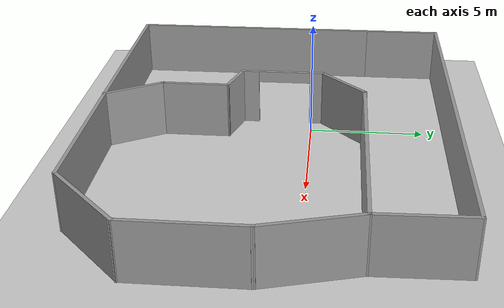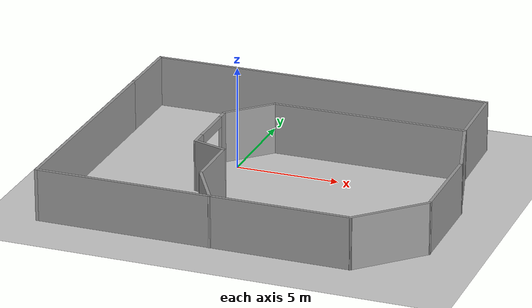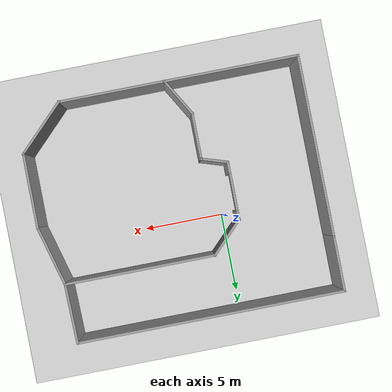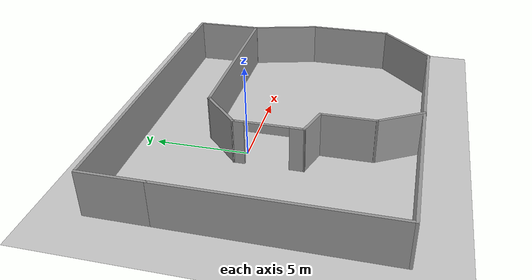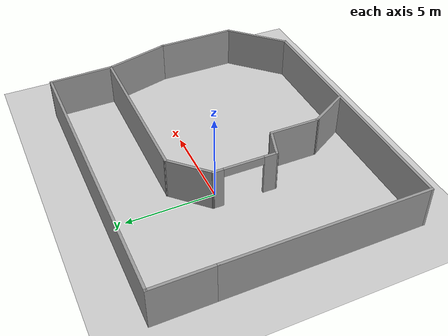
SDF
<sdf version="1.7">
 <world name="default">
  <light name="sun" type="directional">
   <pose>0 0 10 0 -0 0</pose>
   <diffuse>0.8 0.8 0.8 1</diffuse>
   <specular>0.2 0.2 0.2 1</specular>
   <attenuation>
    <range>1000</range>
    <constant>0.9</constant>
    <linear>0.01</linear>
    <quadratic>0.001</quadratic>
   </attenuation>
   <direction>-0.5 0.1 -0.9</direction>
   <spot><inner_angle>0</inner_angle><outer_angle>0</outer_angle><falloff>0</falloff></spot>
  </light>
  <model name="ground_plane">
   <static>1</static>
   <link name="link">
    <collision name="collision">
     <geometry><plane><normal>0 0 1</normal><size>100 100</size></plane></geometry>
     <surface>
      <contact><collide_bitmask>65535</collide_bitmask></contact>
      <friction><ode><mu>100</mu><mu2>50</mu2></ode></friction>
     </surface>
    </collision>
    <visual name="visual">
     <cast_shadows>0</cast_shadows>
     <geometry><plane><normal>0 0 1</normal><size>100 100</size></plane></geometry>
     <material>
      <script><uri>file://media/materials/scripts/gazebo.material</uri><name>Gazebo/Grey</name></script>
     </material>
    </visual>
   </link>
  </model>
  <gravity>0 0 -9.8</gravity>
  <magnetic_field>6e-06 2.3e-05 -4.2e-05</magnetic_field>
  <atmosphere type="adiabatic"/>
  <physics type="ode">
   <max_step_size>0.001</max_step_size>
   <real_time_factor>1</real_time_factor>
   <real_time_update_rate>1000</real_time_update_rate>
  </physics>
  <scene><ambient>0.4 0.4 0.4 1</ambient><background>0.7 0.7 0.7 1</background><shadows>1</shadows></scene>
  <audio><device>default</device></audio>
  <spherical_coordinates>
   <surface_model>EARTH_WGS84</surface_model>
   <latitude_deg>0</latitude_deg>
   <longitude_deg>0</longitude_deg>
   <elevation>0</elevation>
   <heading_deg>0</heading_deg>
  </spherical_coordinates>
  <model name="v2">
   <pose>2.5406 -1.40909 0 0 -0 0</pose>
   <link name="Wall_0">
    <collision name="Wall_0_Collision">
     <geometry><box><size>3 0.15 2.5</size></box></geometry>
     <pose>0 0 1.25 0 -0 0</pose>
    </collision>
    <visual name="Wall_0_Visual">
     <pose>0 0 1.25 0 -0 0</pose>
     <geometry><box><size>3 0.15 2.5</size></box></geometry>
     <material>
      <script><uri>file://media/materials/scripts/gazebo.material</uri><name>Gazebo/Grey</name></script>
      <ambient>1 1 1 1</ambient>
     </material>
     <meta><layer>0</layer></meta>
    </visual>
    <pose>-1.80171 -3.65857 0 0 -0 -1.5708</pose>
   </link>
   <link name="Wall_1">
    <collision name="Wall_1_Collision">
     <geometry><box><size>2.75 0.15 2.5</size></box></geometry>
     <pose>0 0 1.25 0 -0 0</pose>
    </collision>
    <visual name="Wall_1_Visual">
     <pose>0 0 1.25 0 -0 0</pose>
     <geometry><box><size>2.75 0.15 2.5</size></box></geometry>
     <material>
      <script><uri>file://media/materials/scripts/gazebo.material</uri><name>Gazebo/Grey</name></script>
      <ambient>1 1 1 1</ambient>
     </material>
     <meta><layer>0</layer></meta>
    </visual>
    <pose>-1.15171 -6.2094 0 0 -0 -1.0472</pose>
   </link>
   <link name="Wall_11">
    <collision name="Wall_11_Collision">
     <geometry><box><size>8.5 0.15 2.5</size></box></geometry>
     <pose>0 0 1.25 0 -0 0</pose>
    </collision>
    <visual name="Wall_11_Visual">
     <pose>0 0 1.25 0 -0 0</pose>
     <geometry><box><size>8.5 0.15 2.5</size></box></geometry>
     <material>
      <script><uri>file://media/materials/scripts/gazebo.material</uri><name>Gazebo/Grey</name></script>
      <ambient>1 1 1 1</ambient>
     </material>
     <meta><layer>0</layer></meta>
    </visual>
    <pose>-4.67671 -7.33524 0 0 -0 3.14159</pose>
   </link>
   <link name="Wall_12">
    <collision name="Wall_12_Collision">
     <geometry><box><size>11.5 0.15 2.5</size></box></geometry>
     <pose>0 0 1.25 0 -0 0</pose>
    </collision>
    <visual name="Wall_12_Visual">
     <pose>0 0 1.25 0 -0 0</pose>
     <geometry><box><size>11.5 0.15 2.5</size></box></geometry>
     <material>
      <script><uri>file://media/materials/scripts/gazebo.material</uri><name>Gazebo/Grey</name></script>
      <ambient>1 1 1 1</ambient>
     </material>
     <meta><layer>0</layer></meta>
    </visual>
    <pose>-8.85171 -1.66024 0 0 -0 1.5708</pose>
   </link>
   <link name="Wall_13">
    <collision name="Wall_13_Collision">
     <geometry><box><size>3.5 0.15 2.5</size></box></geometry>
     <pose>0 0 1.25 0 -0 0</pose>
    </collision>
    <visual name="Wall_13_Visual">
     <pose>0 0 1.25 0 -0 0</pose>
     <geometry><box><size>3.5 0.15 2.5</size></box></geometry>
     <material>
      <script><uri>file://media/materials/scripts/gazebo.material</uri><name>Gazebo/Grey</name></script>
      <ambient>1 1 1 1</ambient>
     </material>
     <meta><layer>0</layer></meta>
    </visual>
    <pose>-8.85171 5.68976 0 0 -0 1.5708</pose>
   </link>
   <link name="Wall_14">
    <collision name="Wall_14_Collision">
     <geometry><box><size>16.75 0.15 2.5</size></box></geometry>
     <pose>0 0 1.25 0 -0 0</pose>
    </collision>
    <visual name="Wall_14_Visual">
     <pose>0 0 1.25 0 -0 0</pose>
     <geometry><box><size>16.75 0.15 2.5</size></box></geometry>
     <material>
      <script><uri>file://media/materials/scripts/gazebo.material</uri><name>Gazebo/Grey</name></script>
      <ambient>1 1 1 1</ambient>
     </material>
     <meta><layer>0</layer></meta>
    </visual>
    <pose>-0.551713 7.36476 0 0 -0 0</pose>
   </link>
   <link name="Wall_15">
    <collision name="Wall_15_Collision">
     <geometry><box><size>3.80961 0.15 2.5</size></box></geometry>
     <pose>0 0 1.25 0 -0 0</pose>
    </collision>
    <visual name="Wall_15_Visual">
     <pose>0 0 1.25 0 -0 0</pose>
     <geometry><box><size>3.80961 0.15 2.5</size></box></geometry>
     <material>
      <script><uri>file://media/materials/scripts/gazebo.material</uri><name>Gazebo/Grey</name></script>
      <ambient>1 1 1 1</ambient>
     </material>
     <meta><layer>0</layer></meta>
    </visual>
    <pose>7.78624 5.53535 0 0 -0 -1.55005</pose>
   </link>
   <link name="Wall_2">
    <collision name="Wall_2_Collision">
     <geometry><box><size>6.75 0.15 2.5</size></box></geometry>
     <pose>0 0 1.25 0 -0 0</pose>
    </collision>
    <visual name="Wall_2_Visual">
     <pose>0 0 1.25 0 -0 0</pose>
     <geometry><box><size>6.75 0.15 2.5</size></box></geometry>
     <material>
      <script><uri>file://media/materials/scripts/gazebo.material</uri><name>Gazebo/Grey</name></script>
      <ambient>1 1 1 1</ambient>
     </material>
     <meta><layer>0</layer></meta>
    </visual>
    <pose>2.79829 -7.33524 0 0 -0 0</pose>
   </link>
   <link name="Wall_3">
    <collision name="Wall_3_Collision">
     <geometry><box><size>4 0.15 2.5</size></box></geometry>
     <pose>0 0 1.25 0 -0 0</pose>
    </collision>
    <visual name="Wall_3_Visual">
     <pose>0 0 1.25 0 -0 0</pose>
     <geometry><box><size>4 0.15 2.5</size></box></geometry>
     <material>
      <script><uri>file://media/materials/scripts/gazebo.material</uri><name>Gazebo/Grey</name></script>
      <ambient>1 1 1 1</ambient>
     </material>
     <meta><layer>0</layer></meta>
    </visual>
    <pose>7.45947 -5.97406 0 0 -0 0.785398</pose>
   </link>
   <link name="Wall_4">
    <collision name="Wall_4_Collision">
     <geometry><box><size>4.75 0.15 2.5</size></box></geometry>
     <pose>0 0 1.25 0 -0 0</pose>
    </collision>
    <visual name="Wall_4_Visual">
     <pose>0 0 1.25 0 -0 0</pose>
     <geometry><box><size>4.75 0.15 2.5</size></box></geometry>
     <material>
      <script><uri>file://media/materials/scripts/gazebo.material</uri><name>Gazebo/Grey</name></script>
      <ambient>1 1 1 1</ambient>
     </material>
     <meta><layer>0</layer></meta>
    </visual>
    <pose>8.82065 -2.31288 0 0 -0 1.5708</pose>
   </link>
   <link name="Wall_5">
    <collision name="Wall_5_Collision">
     <geometry><box><size>4 0.15 2.5</size></box></geometry>
     <pose>0 0 1.25 0 -0 0</pose>
    </collision>
    <visual name="Wall_5_Visual">
     <pose>0 0 1.25 0 -0 0</pose>
     <geometry><box><size>4 0.15 2.5</size></box></geometry>
     <material>
      <script><uri>file://media/materials/scripts/gazebo.material</uri><name>Gazebo/Grey</name></script>
      <ambient>1 1 1 1</ambient>
     </material>
     <meta><layer>0</layer></meta>
    </visual>
    <pose>8.32242 1.84653 0 0 -0 1.8326</pose>
   </link>
   <link name="Wall_6">
    <collision name="Wall_6_Collision">
     <geometry><box><size>9.5 0.15 2.5</size></box></geometry>
     <pose>0 0 1.25 0 -0 0</pose>
    </collision>
    <visual name="Wall_6_Visual">
     <pose>0 0 1.25 0 -0 0</pose>
     <geometry><box><size>9.5 0.15 2.5</size></box></geometry>
     <material>
      <script><uri>file://media/materials/scripts/gazebo.material</uri><name>Gazebo/Grey</name></script>
      <ambient>1 1 1 1</ambient>
     </material>
     <meta><layer>0</layer></meta>
    </visual>
    <pose>3.1492 3.70594 0 0 -0 3.14159</pose>
   </link>
   <link name="Wall_7">
    <collision name="Wall_7_Collision">
     <geometry><box><size>2.75 0.15 2.5</size></box></geometry>
     <pose>0 0 1.25 0 -0 0</pose>
    </collision>
    <visual name="Wall_7_Visual">
     <pose>0 0 1.25 0 -0 0</pose>
     <geometry><box><size>2.75 0.15 2.5</size></box></geometry>
     <material>
      <script><uri>file://media/materials/scripts/gazebo.material</uri><name>Gazebo/Grey</name></script>
      <ambient>1 1 1 1</ambient>
     </material>
     <meta><layer>0</layer></meta>
    </visual>
    <pose>-2.44504 2.7867 0 0 -0 -2.35619</pose>
   </link>
   <link name="Wall_8">
    <pose>-3.36428 0.067462 0 0 -0 -1.5708</pose>
    <visual name="Wall_8_Visual_0">
     <pose>-1.5511 0 1.25 0 -0 0</pose>
     <geometry><box><size>0.647805 0.15 2.5</size></box></geometry>
     <material>
      <script><uri>file://media/materials/scripts/gazebo.material</uri><name>Gazebo/Grey</name></script>
      <ambient>1 1 1 1</ambient>
     </material>
     <meta><layer>0</layer></meta>
    </visual>
    <collision name="Wall_8_Collision_0">
     <geometry><box><size>0.647805 0.15 2.5</size></box></geometry>
     <pose>-1.5511 0 1.25 0 -0 0</pose>
    </collision>
    <visual name="Wall_8_Visual_1">
     <pose>1.47176 0 1.25 0 -0 0</pose>
     <geometry><box><size>0.806477 0.15 2.5</size></box></geometry>
     <material>
      <script><uri>file://media/materials/scripts/gazebo.material</uri><name>Gazebo/Grey</name></script>
      <ambient>1 1 1 1</ambient>
     </material>
     <meta><layer>0</layer></meta>
    </visual>
    <collision name="Wall_8_Collision_1">
     <geometry><box><size>0.806477 0.15 2.5</size></box></geometry>
     <pose>1.47176 0 1.25 0 -0 0</pose>
    </collision>
    <visual name="Wall_8_Visual_2">
     <pose>-0.079336 0 2.25 0 -0 0</pose>
     <geometry><box><size>2.29572 0.15 0.5</size></box></geometry>
     <material>
      <script><uri>file://media/materials/scripts/gazebo.material</uri><name>Gazebo/Grey</name></script>
      <ambient>1 1 1 1</ambient>
     </material>
     <meta><layer>0</layer></meta>
    </visual>
    <collision name="Wall_8_Collision_2">
     <geometry><box><size>2.29572 0.15 0.5</size></box></geometry>
     <pose>-0.079336 0 2.25 0 -0 0</pose>
    </collision>
   </link>
   <link name="Wall_9">
    <collision name="Wall_9_Collision">
     <geometry><box><size>1.79093 0.15 2.5</size></box></geometry>
     <pose>0 0 1.25 0 -0 0</pose>
    </collision>
    <visual name="Wall_9_Visual">
     <pose>0 0 1.25 0 -0 0</pose>
     <geometry><box><size>1.79093 0.15 2.5</size></box></geometry>
     <material>
      <script><uri>file://media/materials/scripts/gazebo.material</uri><name>Gazebo/Grey</name></script>
      <ambient>1 1 1 1</ambient>
     </material>
     <meta><layer>0</layer></meta>
    </visual>
    <pose>-2.583 -1.98305 0 0 -0 -0.310289</pose>
   </link>
   <static>1</static>
  </model>
 </world>
</sdf>
